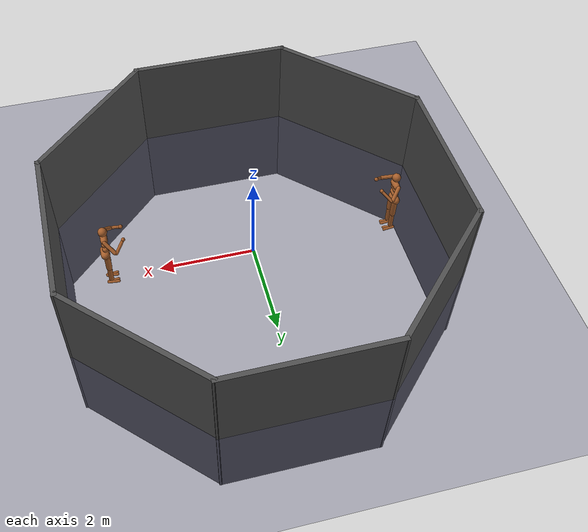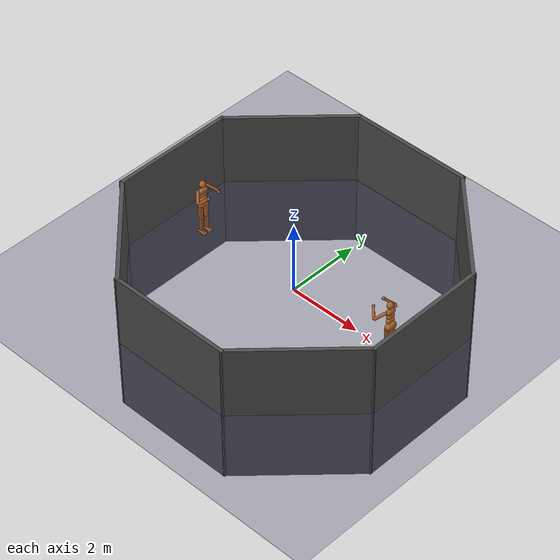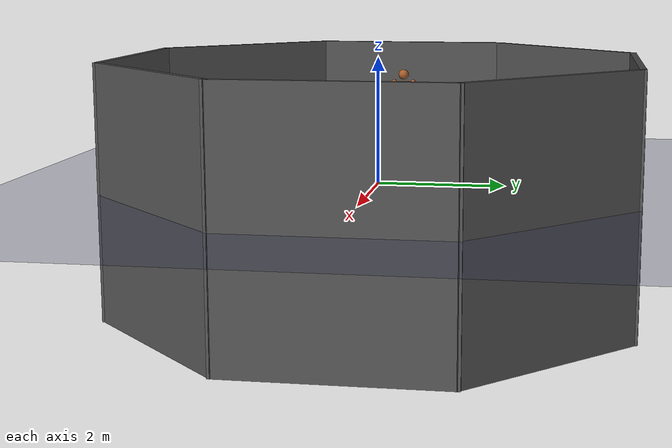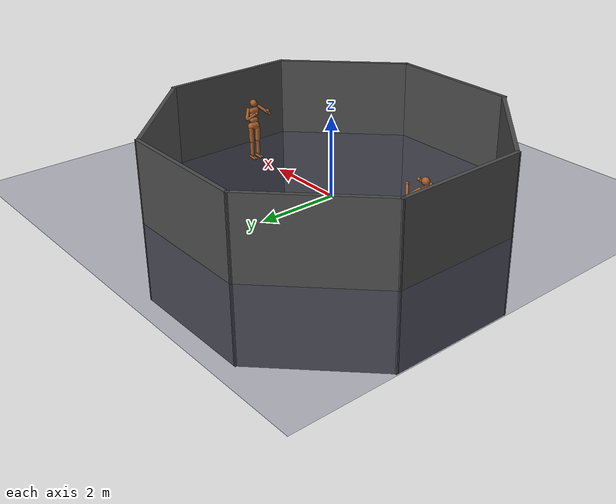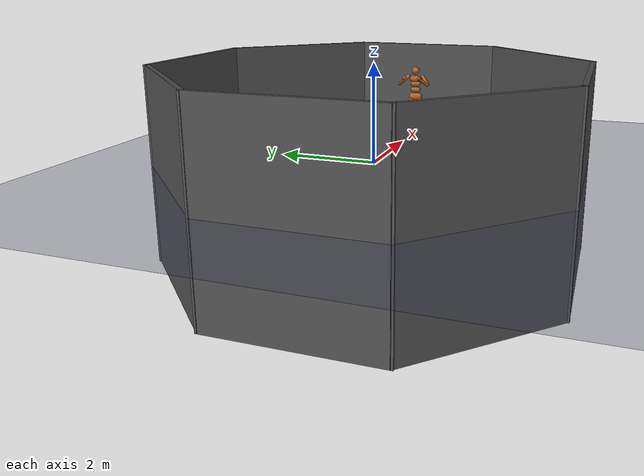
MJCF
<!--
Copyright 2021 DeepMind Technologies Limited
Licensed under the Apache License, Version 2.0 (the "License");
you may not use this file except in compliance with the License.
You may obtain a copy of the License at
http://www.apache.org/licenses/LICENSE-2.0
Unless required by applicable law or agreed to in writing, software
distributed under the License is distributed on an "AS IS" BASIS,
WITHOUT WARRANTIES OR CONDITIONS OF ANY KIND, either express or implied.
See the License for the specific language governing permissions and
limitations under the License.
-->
<mujoco model="Humanoid">
  <option timestep="0.01"/>

  <visual>
    <map force="0.1" zfar="30"/>
    <rgba haze="0.15 0.25 0.35 1"/>
    <global offwidth="2560" offheight="1440" elevation="-20" azimuth="120"/>
  </visual>

  <statistic center="0 0 0.7"/>

  <asset>
    <texture type="skybox" builtin="gradient" rgb1=".3 .5 .7" rgb2="0 0 0" width="32" height="512"/>
    <texture name="body" type="cube" builtin="flat" width="127" height="1278" rgb1="0.8 0.6 0.4" rgb2="0.8 0.6 0.4" markrgb="1 1 1" random="0.01"/>
    <material name="body" texture="body" texuniform="true" rgba="0.8 0.6 0.4 1"/>
    <texture name="wall" type="cube" builtin="flat" width="127" height="1278" rgb1="0.3 0.3 0.3" rgb2="0.3 0.3 0.3" markrgb="1 1 1" random="0.01"/>

    <material name="wall" texture="wall" texuniform="true"/>

    <texture name="grid" type="2d" builtin="checker" width="512" height="512" rgb1=".2 .2 .4" rgb2=".3 .3 .4"/>
    <material name="grid" texture="grid" texrepeat="1 1" texuniform="true" reflectance="0.2"/>
  </asset>

  <default>
    <motor ctrlrange="-1 1" ctrllimited="true"/>
    <default class="body">

      <!-- geoms -->
      <geom type="capsule" condim="1" friction=".7" solimp=".9 .99 .003" solref=".015 1" material="body"/>
      <default class="thigh">
        <geom size=".06"/>
      </default>
      <default class="shin">
        <geom fromto="0 0 0 0 0 -.3"  size=".049"/>
      </default>
      <default class="foot">
        <geom size=".027"/>
        <default class="foot1">
          <geom fromto="-.07 -.01 0 .14 -.03 0"/>
        </default>
        <default class="foot2">
          <geom fromto="-.07 .01 0 .14  .03 0"/>
        </default>
      </default>
      <default class="arm_upper">
        <geom size=".04"/>
      </default>
      <default class="arm_lower">
        <geom size=".031"/>
      </default>
      <default class="hand">
        <geom type="sphere" size=".04"/>
      </default>
      <default class="octo_wall">
	<geom size="0.05 1.7 2" type="box" material="wall" condim="3" pos="-4 0 0"/>
      </default>

      <!-- joints -->
      <joint type="hinge" damping=".2" stiffness="1" armature=".01" limited="true" solimplimit="0 .99 .01"/>
      <default class="joint_big">
        <joint damping="5" stiffness="10"/>
        <default class="hip_x">
          <joint range="-30 10"/>
        </default>
        <default class="hip_z">
          <joint range="-60 35"/>
        </default>
        <default class="hip_y">
          <joint axis="0 1 0" range="-150 20"/>
        </default>
        <default class="joint_big_stiff">
          <joint stiffness="20"/>
        </default>
      </default>
      <default class="knee">
        <joint pos="0 0 .02" axis="0 -1 0" range="-160 2"/>
      </default>
      <default class="ankle">
        <joint range="-50 50"/>
        <default class="ankle_y">
          <joint pos="0 0 .08" axis="0 1 0" stiffness="6"/>
        </default>
        <default class="ankle_x">
          <joint pos="0 0 .04" stiffness="3"/>
        </default>
      </default>
      <default class="shoulder">
        <joint range="-85 60"/>
      </default>
      <default class="elbow">
        <joint range="-100 50" stiffness="0"/>
      </default>
    </default>
  </default>

  <worldbody>
    <light name="light" mode="fixed" target="torso" directional="true" diffuse="1. 1. 1." specular="0.3 0.3 0.3" pos="0 -6 4" cutoff="30"/>
    <geom name="floor" size="0 0 .05" type="plane" material="grid" condim="3"/>

    <geom name="wall1" class="octo_wall" pos="-4 0 0"/>
    <geom name="wall2" class="octo_wall" pos="4 0 0"/>
    <geom name="wall3" class="octo_wall" pos="0 4 0" euler="0 0  90"/>
    <geom name="wall4" class="octo_wall" pos="0 -4 0" euler="0 0 -90"/>

    <geom name="wall5" class="octo_wall" pos="2.82 2.82 0" euler="0 0 45"/>
    <geom name="wall6" class="octo_wall" pos="2.82 -2.82 0" euler="0 0 -45"/>
    <geom name="wall7" class="octo_wall" pos="-2.82 2.82 0" euler="0 0 135"/>
    <geom name="wall8" class="octo_wall" pos="-2.82 -2.82 0" euler="0 0 45"/>

    <body name="torso" pos="-3 0 1.282" childclass="body">
      <camera name="back" pos="-3 0 1" xyaxes="0 -1 0 1 0 2" mode="trackcom"/>
      <camera name="side" pos="0 -3 1" xyaxes="1 0 0 0 1 2" mode="trackcom"/>
      <freejoint name="root"/>
      <geom name="torso" fromto="0 -.07 0 0 .07 0" size=".07"/>
      <geom name="waist_upper" fromto="-.01 -.06 -.12 -.01 .06 -.12" size=".06"/>
      <body name="head" pos="0 0 .19">
        <geom name="head" type="sphere" size=".09"/>
        <camera name="egocentric" pos=".09 0 0" xyaxes="0 -1 0 .1 0 1" fovy="80"/>
      </body>
      <body name="waist_lower" pos="-.01 0 -.26">
        <geom name="waist_lower" fromto="0 -.06 0 0 .06 0" size=".06"/>
        <joint name="abdomen_z" pos="0 0 .065" axis="0 0 1" range="-45 45" class="joint_big_stiff"/>
        <joint name="abdomen_y" pos="0 0 .065" axis="0 1 0" range="-75 30" class="joint_big"/>
        <body name="pelvis" pos="0 0 -.165">
          <joint name="abdomen_x" pos="0 0 .1" axis="1 0 0" range="-35 35" class="joint_big"/>
          <geom name="butt" fromto="-.02 -.07 0 -.02 .07 0" size=".09"/>
          <body name="thigh_right" pos="0 -.1 -.04">
            <joint name="hip_x_right" axis="1 0 0" class="hip_x"/>
            <joint name="hip_z_right" axis="0 0 1" class="hip_z"/>
            <joint name="hip_y_right" class="hip_y"/>
            <geom name="thigh_right" fromto="0 0 0 0 .01 -.34" class="thigh"/>
            <body name="shin_right" pos="0 .01 -.4">
              <joint name="knee_right" class="knee"/>
              <geom name="shin_right" class="shin"/>
              <body name="foot_right" pos="0 0 -.39">
                <joint name="ankle_y_right" class="ankle_y"/>
                <joint name="ankle_x_right" class="ankle_x" axis="1 0 .5"/>
                <geom name="foot1_right" class="foot1"/>
                <geom name="foot2_right" class="foot2"/>
              </body>
            </body>
          </body>
          <body name="thigh_left" pos="0 .1 -.04">
            <joint name="hip_x_left" axis="-1 0 0" class="hip_x"/>
            <joint name="hip_z_left" axis="0 0 -1" class="hip_z"/>
            <joint name="hip_y_left" class="hip_y"/>
            <geom name="thigh_left" fromto="0 0 0 0 -.01 -.34" class="thigh"/>
            <body name="shin_left" pos="0 -.01 -.4">
              <joint name="knee_left" class="knee"/>
              <geom name="shin_left" fromto="0 0 0 0 0 -.3" class="shin"/>
              <body name="foot_left" pos="0 0 -.39">
                <joint name="ankle_y_left" class="ankle_y"/>
                <joint name="ankle_x_left" class="ankle_x" axis="-1 0 -.5"/>
                <geom name="foot1_left" class="foot1"/>
                <geom name="foot2_left" class="foot2"/>
              </body>
            </body>
          </body>
        </body>
      </body>
      <body name="upper_arm_right" pos="0 -.17 .06">
        <joint name="shoulder1_right" axis="2 1 1"  class="shoulder"/>
        <joint name="shoulder2_right" axis="0 -1 1" class="shoulder"/>
        <geom name="upper_arm_right" fromto="0 0 0 .16 -.16 -.16" class="arm_upper"/>
        <body name="lower_arm_right" pos=".18 -.18 -.18">
          <joint name="elbow_right" axis="0 -1 1" class="elbow"/>
          <geom name="lower_arm_right" fromto=".01 .01 .01 .17 .17 .17" class="arm_lower"/>
          <body name="hand_right" pos=".18 .18 .18">
            <geom name="hand_right" zaxis="1 1 1" class="hand"/>
          </body>
        </body>
      </body>
      <body name="upper_arm_left" pos="0 .17 .06">
        <joint name="shoulder1_left" axis="-2 1 -1" class="shoulder"/>
        <joint name="shoulder2_left" axis="0 -1 -1"  class="shoulder"/>
        <geom name="upper_arm_left" fromto="0 0 0 .16 .16 -.16" class="arm_upper"/>
        <body name="lower_arm_left" pos=".18 .18 -.18">
          <joint name="elbow_left" axis="0 -1 -1" class="elbow"/>
          <geom name="lower_arm_left" fromto=".01 -.01 .01 .17 -.17 .17" class="arm_lower"/>
          <body name="hand_left" pos=".18 -.18 .18">
            <geom name="hand_left" zaxis="1 -1 1" class="hand"/>
          </body>
        </body>
      </body>
    </body>
  </worldbody>

  <contact>
    <exclude body1="waist_lower" body2="thigh_right"/>
    <exclude body1="waist_lower" body2="thigh_left"/>
  </contact>

  <tendon>
    <fixed name="hamstring_right" limited="true" range="-0.3 2">
      <joint joint="hip_y_right" coef=".5"/>
      <joint joint="knee_right" coef="-.5"/>
    </fixed>
    <fixed name="hamstring_left" limited="true" range="-0.3 2">
      <joint joint="hip_y_left" coef=".5"/>
      <joint joint="knee_left" coef="-.5"/>
    </fixed>
  </tendon>

  <actuator>
    <motor name="abdomen_y"       gear="40"  joint="abdomen_y"/>
    <motor name="abdomen_z"       gear="40"  joint="abdomen_z"/>
    <motor name="abdomen_x"       gear="40"  joint="abdomen_x"/>
    <motor name="hip_x_right"     gear="40"  joint="hip_x_right"/>
    <motor name="hip_z_right"     gear="40"  joint="hip_z_right"/>
    <motor name="hip_y_right"     gear="120" joint="hip_y_right"/>
    <motor name="knee_right"      gear="80"  joint="knee_right"/>
    <motor name="ankle_x_right"   gear="20"  joint="ankle_x_right"/>
    <motor name="ankle_y_right"   gear="20"  joint="ankle_y_right"/>
    <motor name="hip_x_left"      gear="40"  joint="hip_x_left"/>
    <motor name="hip_z_left"      gear="40"  joint="hip_z_left"/>
    <motor name="hip_y_left"      gear="120" joint="hip_y_left"/>
    <motor name="knee_left"       gear="80"  joint="knee_left"/>
    <motor name="ankle_x_left"    gear="20"  joint="ankle_x_left"/>
    <motor name="ankle_y_left"    gear="20"  joint="ankle_y_left"/>
    <motor name="shoulder1_right" gear="20"  joint="shoulder1_right"/>
    <motor name="shoulder2_right" gear="20"  joint="shoulder2_right"/>
    <motor name="elbow_right"     gear="40"  joint="elbow_right"/>
    <motor name="shoulder1_left"  gear="20"  joint="shoulder1_left"/>
    <motor name="shoulder2_left"  gear="20"  joint="shoulder2_left"/>
    <motor name="elbow_left"      gear="40"  joint="elbow_left"/>
  </actuator>

  <worldbody >
    <body name="2torso" pos="3 0 1.282" childclass="body" euler="0 0 180">
      <camera name="2back" pos="-3 0 1" xyaxes="0 -1 0 1 0 2" mode="trackcom"/>
      <camera name="2side" pos="0 -3 1" xyaxes="1 0 0 0 1 2" mode="trackcom"/>
      <freejoint name="2root"/>
      <geom name="2torso" fromto="0 -.07 0 0 .07 0" size=".07" />
      <geom name="2waist_upper" fromto="-.01 -.06 -.12 -.01 .06 -.12" size=".06"/>
      <body name="2head" pos="0 0 .19">
        <geom name="2head" type="sphere" size=".09"/>
        <camera name="2egocentric" pos=".09 0 0" xyaxes="0 -1 0 .1 0 1" fovy="80"/>
      </body>
      <body name="2waist_lower" pos="-.01 0 -.26">
        <geom name="2waist_lower" fromto="0 -.06 0 0 .06 0" size=".06"/>
        <joint name="2abdomen_z" pos="0 0 .065" axis="0 0 1" range="-45 45" class="joint_big_stiff"/>
        <joint name="2abdomen_y" pos="0 0 .065" axis="0 1 0" range="-75 30" class="joint_big"/>
        <body name="2pelvis" pos="0 0 -.165">
          <joint name="2abdomen_x" pos="0 0 .1" axis="1 0 0" range="-35 35" class="joint_big"/>
          <geom name="2butt" fromto="-.02 -.07 0 -.02 .07 0" size=".09"/>
          <body name="2thigh_right" pos="0 -.1 -.04">
            <joint name="2hip_x_right" axis="1 0 0" class="hip_x"/>
            <joint name="2hip_z_right" axis="0 0 1" class="hip_z"/>
            <joint name="2hip_y_right" class="hip_y"/>
            <geom name="2thigh_right" fromto="0 0 0 0 .01 -.34" class="thigh"/>
            <body name="2shin_right" pos="0 .01 -.4">
              <joint name="2knee_right" class="knee"/>
              <geom name="2shin_right" class="shin"/>
              <body name="2foot_right" pos="0 0 -.39">
                <joint name="2ankle_y_right" class="ankle_y"/>
                <joint name="2ankle_x_right" class="ankle_x" axis="1 0 .5"/>
                <geom name="2foot1_right" class="foot1"/>
                <geom name="2foot2_right" class="foot2"/>
              </body>
            </body>
          </body>
          <body name="2thigh_left" pos="0 .1 -.04">
            <joint name="2hip_x_left" axis="-1 0 0" class="hip_x"/>
            <joint name="2hip_z_left" axis="0 0 -1" class="hip_z"/>
            <joint name="2hip_y_left" class="hip_y"/>
            <geom name="2thigh_left" fromto="0 0 0 0 -.01 -.34" class="thigh"/>
            <body name="2shin_left" pos="0 -.01 -.4">
              <joint name="2knee_left" class="knee"/>
              <geom name="2shin_left" fromto="0 0 0 0 0 -.3" class="shin"/>
              <body name="2foot_left" pos="0 0 -.39">
                <joint name="2ankle_y_left" class="ankle_y"/>
                <joint name="2ankle_x_left" class="ankle_x" axis="-1 0 -.5"/>
                <geom name="2foot1_left" class="foot1"/>
                <geom name="2foot2_left" class="foot2"/>
              </body>
            </body>
          </body>
        </body>
      </body>
      <body name="2upper_arm_right" pos="0 -.17 .06">
        <joint name="2shoulder1_right" axis="2 1 1"  class="shoulder"/>
        <joint name="2shoulder2_right" axis="0 -1 1" class="shoulder"/>
        <geom name="2upper_arm_right" fromto="0 0 0 .16 -.16 -.16" class="arm_upper"/>
        <body name="2lower_arm_right" pos=".18 -.18 -.18">
          <joint name="2elbow_right" axis="0 -1 1" class="elbow"/>
          <geom name="2lower_arm_right" fromto=".01 .01 .01 .17 .17 .17" class="arm_lower"/>
          <body name="2hand_right" pos=".18 .18 .18">
            <geom name="2hand_right" zaxis="1 1 1" class="hand"/>
          </body>
        </body>
      </body>
      <body name="2upper_arm_left" pos="0 .17 .06">
        <joint name="2shoulder1_left" axis="-2 1 -1" class="shoulder"/>
        <joint name="2shoulder2_left" axis="0 -1 -1"  class="shoulder"/>
        <geom name="2upper_arm_left" fromto="0 0 0 .16 .16 -.16" class="arm_upper"/>
        <body name="2lower_arm_left" pos=".18 .18 -.18">
          <joint name="2elbow_left" axis="0 -1 -1" class="elbow"/>
          <geom name="2lower_arm_left" fromto=".01 -.01 .01 .17 -.17 .17" class="arm_lower"/>
          <body name="2hand_left" pos=".18 -.18 .18">
            <geom name="2hand_left" zaxis="1 -1 1" class="hand"/>
          </body>
        </body>
      </body>
    </body>
  </worldbody>

  <contact>
    <exclude body1="2waist_lower" body2="2thigh_right"/>
    <exclude body1="2waist_lower" body2="2thigh_left"/>
  </contact>

  <tendon>
    <fixed name="2hamstring_right" limited="true" range="-0.3 2">
      <joint joint="2hip_y_right" coef=".5"/>
      <joint joint="2knee_right" coef="-.5"/>
    </fixed>
    <fixed name="2hamstring_left" limited="true" range="-0.3 2">
      <joint joint="2hip_y_left" coef=".5"/>
      <joint joint="2knee_left" coef="-.5"/>
    </fixed>
  </tendon>

  <actuator>
    <motor name="2abdomen_y"       gear="40"  joint="2abdomen_y"/>
    <motor name="2abdomen_z"       gear="40"  joint="2abdomen_z"/>
    <motor name="2abdomen_x"       gear="40"  joint="2abdomen_x"/>
    <motor name="2hip_x_right"     gear="40"  joint="2hip_x_right"/>
    <motor name="2hip_z_right"     gear="40"  joint="2hip_z_right"/>
    <motor name="2hip_y_right"     gear="120" joint="2hip_y_right"/>
    <motor name="2knee_right"      gear="80"  joint="2knee_right"/>
    <motor name="2ankle_x_right"   gear="20"  joint="2ankle_x_right"/>
    <motor name="2ankle_y_right"   gear="20"  joint="2ankle_y_right"/>
    <motor name="2hip_x_left"      gear="40"  joint="2hip_x_left"/>
    <motor name="2hip_z_left"      gear="40"  joint="2hip_z_left"/>
    <motor name="2hip_y_left"      gear="120" joint="2hip_y_left"/>
    <motor name="2knee_left"       gear="80"  joint="2knee_left"/>
    <motor name="2ankle_x_left"    gear="20"  joint="2ankle_x_left"/>
    <motor name="2ankle_y_left"    gear="20"  joint="2ankle_y_left"/>
    <motor name="2shoulder1_right" gear="20"  joint="2shoulder1_right"/>
    <motor name="2shoulder2_right" gear="20"  joint="2shoulder2_right"/>
    <motor name="2elbow_right"     gear="40"  joint="2elbow_right"/>
    <motor name="2shoulder1_left"  gear="20"  joint="2shoulder1_left"/>
    <motor name="2shoulder2_left"  gear="20"  joint="2shoulder2_left"/>
    <motor name="2elbow_left"      gear="40"  joint="2elbow_left"/>
  </actuator>
</mujoco>
